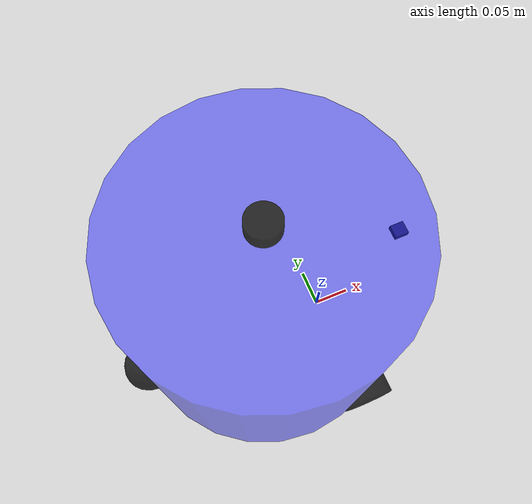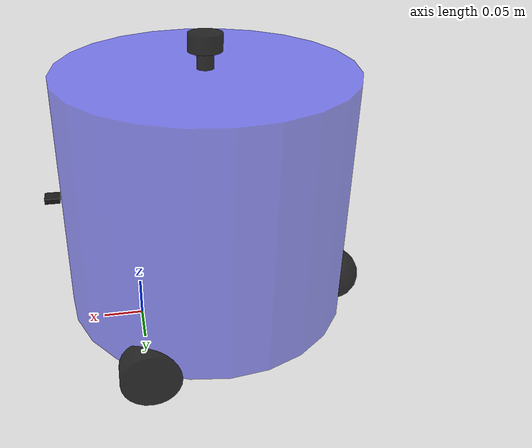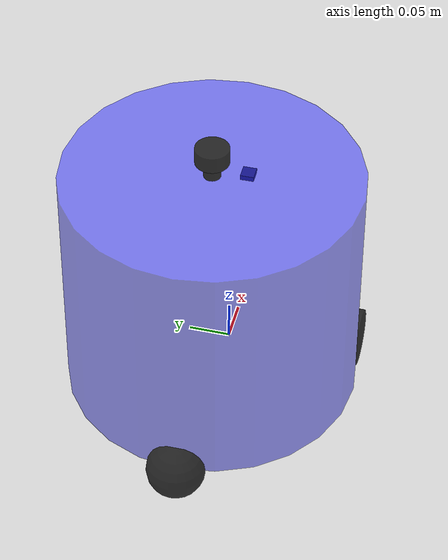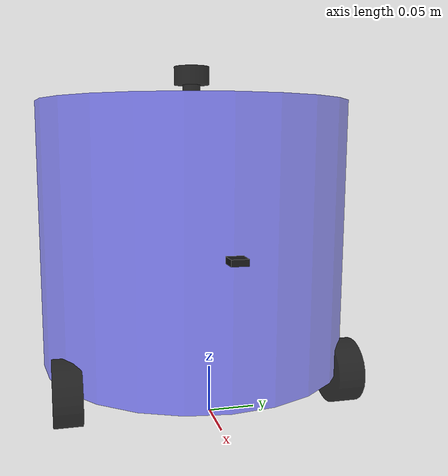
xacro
<?xml version="1.0"?>
<robot xmlns:xacro="http://www.ros.org/wiki/xacro" name="my_robot">

    <!-- ========== 定义参数变量（对应你的 Python 代码） ========== -->
    <xacro:property name="body_length" value="0.30" />
    <xacro:property name="body_radius" value="0.175" />
    <xacro:property name="body_mass" value="2.0" />

    <xacro:property name="wheel_radius" value="0.035" />
    <xacro:property name="wheel_width" value="0.03" />
    <xacro:property name="wheel_mass" value="0.2" />

    <xacro:property name="caster_radius" value="0.035" />
    <xacro:property name="caster_mass" value="0.1" />

    <xacro:property name="lidar_radius" value="0.02" />
    <xacro:property name="lidar_height" value="0.02" />

    <!-- 计算位置偏移 -->
    <xacro:property name="body_offset" value="${body_length/2.0 + wheel_radius}" />
    <xacro:property name="wheel_z_offset" value="${wheel_radius - body_offset}" />
    <xacro:property name="caster_z_offset" value="${wheel_radius - body_offset}" />
    <xacro:property name="lidar_z_position" value="${body_length/2.0}" />

    <!-- 轮子夹角 60 度三角布局 -->
    <xacro:property name="wheel_x_offset" value="${body_radius/2.0}" />
    <xacro:property name="wheel_y_offset" value="${1.732 * body_radius/2.0}" />

    <!-- ========== 包含组件宏定义 ========== -->
    <!-- 基座组件 -->
    <xacro:include filename="$(find robot_description)/urdf/robot/base.urdf.xacro" />

    <!-- 传感器组件 -->
    <xacro:include filename="$(find robot_description)/urdf/robot/sensor/imu.urdf.xacro" />
    <xacro:include filename="$(find robot_description)/urdf/robot/sensor/laser.urdf.xacro" />
    <xacro:include filename="$(find robot_description)/urdf/robot/sensor/tof.urdf.xacro" />

    <!-- 执行器组件 -->
    <xacro:include filename="$(find robot_description)/urdf/robot/actuator/wheel.urdf.xacro" />
    <xacro:include filename="$(find robot_description)/urdf/robot/actuator/caster.urdf.xacro" />

    <!-- ========== 实例化组件（使用你的参数） ========== -->
    <!-- 基座 -->
    <xacro:base_xacro length="${body_length}" radius="${body_radius}" wheel_radius="${wheel_radius}" wheel_x_offset="${wheel_x_offset}" mass="${body_mass}" />

    <!-- 传感器 -->
    <xacro:property name="imu_x" value="-0.0357881"/>
    <xacro:property name="imu_y" value="-0.0051315"/>
    <xacro:property name="imu_z" value="0.0907072"/>
    <xacro:imu_xacro xyz="${imu_x} ${imu_y} ${imu_z}" />
    <xacro:laser_xacro xyz="0 0 0" radius="${lidar_radius}" height="${lidar_height}" z_pose="${lidar_z_position}"/>
    <xacro:tof_xacro body_radius="${body_radius}"/>

    <!-- 执行器 - 主动轮（60度三角布局） -->
    <xacro:wheel_xacro wheel_name="left"
                       xyz="${wheel_x_offset} ${wheel_y_offset} ${wheel_z_offset}"
                       radius="${wheel_radius}" length="${wheel_width}" mass="${wheel_mass}" />

    <xacro:wheel_xacro wheel_name="right"
                       xyz="${wheel_x_offset} -${wheel_y_offset} ${wheel_z_offset}"
                       radius="${wheel_radius}" length="${wheel_width}" mass="${wheel_mass}" />

    <!-- 执行器 - 从动轮（万向轮） -->
    <xacro:caster_xacro caster_name="rear"
                        xyz="-${body_radius} 0 ${caster_z_offset}"
                        radius="${caster_radius}" mass="${caster_mass}" />

    <!-- ========== Gazebo 插件 ========== -->
    <!-- 差动驱动插件 -->
    <!-- 传感器插件 -->

</robot>

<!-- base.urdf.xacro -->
<robot xmlns:xacro="http://www.ros.org/wiki/xacro">
   <xacro:include filename="$(find robot_description)/urdf/robot/common_inertia.xacro" />
    <xacro:macro name="base_xacro" params="length radius wheel_radius mass wheel_x_offset">
     <link name="base_footprint" />

        <joint name="base_joint" type="fixed">
            <parent link="base_footprint" />
            <child link="base_link" />
            <origin xyz="${-wheel_x_offset} 0.0 ${length/2.0+wheel_radius-0.001}" rpy="0 0 0" />
        </joint>

        <link name="base_link">
            <visual>
                <origin xyz="0 0 0.0" rpy="0 0 0" />
                <geometry>
                    <cylinder length="${length}" radius="${radius}" />
                </geometry>
                <material name="blue">
                    <color rgba="0.1 0.1 1.0 0.5"/>
                </material>
            </visual>
            <collision>
                <origin xyz="0 0 0.0" rpy="0 0 0" />
                <geometry>
                    <cylinder length="${length}" radius="${radius}" />
                </geometry>
                <material name="blue">
                    <color rgba="0.1 0.1 1.0 0.5"/>
                </material>
            </collision>
            <xacro:cylinder_inertia m="${mass}" r="${radius}" h="${length}"/>
        </link>

    </xacro:macro>

</robot>

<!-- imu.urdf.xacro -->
<robot xmlns:xacro="http://www.ros.org/wiki/xacro">
   <!-- 常量定义 -->
   <xacro:property name="M_PI" value="3.1415926535897931"/>

   <xacro:include filename="$(find robot_description)/urdf/robot/common_inertia.xacro" />
    <xacro:macro name="imu_xacro" params="xyz">
        <link name="imu_link">
            <visual>
                <origin xyz="0 0 0" rpy="0 0 0" />
                <geometry>
                    <box size="0.02 0.02 0.02" />
                </geometry>
                <material name="black">
                    <color rgba="0 0 0 0.8" />
                </material>
            </visual>
            <collision>
                <origin xyz="0 0 0" rpy="0 0 0" />
                <geometry>
                    <box size="0.02 0.02 0.02" />
                </geometry>
                <material name="black">
                    <color rgba="0 0 0 0.8" />
                </material>
            </collision>
            <xacro:box_inertia m="0.01" w="0.02" d="0.02" h="0.02"/>
        </link>

        <joint name="imu_joint" type="fixed">
            <parent link="base_link" />
            <child link="imu_link" />
            <origin xyz="0 0 0" rpy="0 0 0"/>
        </joint>
    </xacro:macro>
</robot>

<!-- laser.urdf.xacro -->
<robot xmlns:xacro="http://www.ros.org/wiki/xacro">
   <xacro:include filename="$(find robot_description)/urdf/robot/common_inertia.xacro" />
    <xacro:macro name="laser_xacro" params="xyz radius height z_pose" >
        <gazebo reference="laser_cylinder_link">
            <material>Gazebo/Black</material>
        </gazebo>
        <gazebo reference="laser_link">
            <material>Gazebo/Black</material>
        </gazebo>

        <!-- ============雷达支撑杆2cm================ -->
        <link name="laser_cylinder_link">
            <visual>
                <origin xyz="0 0 0" rpy="0 0 0" />
                <geometry>
                    <cylinder length="${z_pose + height}" radius="0.01" />
                </geometry>
                <material name="black">
                    <color rgba="0.0 0.0 0.0 0.8" />
                </material>
            </visual>
            <collision>
                <origin xyz="0 0 0" rpy="0 0 0" />
                <geometry>
                    <cylinder length="${z_pose + height}" radius="0.01" />
                </geometry>
                <material name="black">
                    <color rgba="0.0 0.0 0.0 0.8" />
                </material>
            </collision>
            <xacro:cylinder_inertia m="0.01" r="0.01" h="${z_pose + height}" />
        </link>

        <joint name="laser_cylinder_joint" type="fixed">
            <parent link="base_link" />
            <child link="laser_cylinder_link" />
            <origin xyz="0 0 ${(z_pose + height)/2.0}" />
        </joint>
        <!-- ============雷达================ -->
        <link name="laser_link">
            <visual>
                <origin xyz="0 0 0" rpy="0 0 0" />
                <geometry>
                    <cylinder length="${height}" radius="${radius}" />
                </geometry>
                <material name="black">
                    <color rgba="0.0 0.0 0.0 0.8" />
                </material>
            </visual>
            <collision>
                <origin xyz="0 0 0" rpy="0 0 0" />
                <geometry>
                    <cylinder length="${height}" radius="${radius}" />
                </geometry>
                <material name="black">
                    <color rgba="0.0 0.0 0.0 0.8" />
                </material>
            </collision>
            <xacro:cylinder_inertia m="0.03" r="${radius}" h="${height}" />
        </link>

        <joint name="laser_joint" type="fixed">
            <parent link="laser_cylinder_link" />
            <child link="laser_link" />
            <origin xyz="0 0 ${z_pose * 0.5 + height}" rpy="0 0 3.14159"/>
        </joint>

    </xacro:macro>

</robot>

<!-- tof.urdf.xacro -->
<robot xmlns:xacro="http://www.ros.org/wiki/xacro">
  <xacro:include filename="$(find robot_description)/urdf/robot/common_inertia.xacro" />
  <xacro:macro name="tof_xacro" params="body_radius mode:=high_precision">
    <!-- ============ TOF400F 传感器参数 (根据手册) ============ -->
    <!-- 尺寸: 18mm x 17mm x 6.5mm -->
    <xacro:property name="tof_length" value="0.018"/>
    <xacro:property name="tof_width"  value="0.017"/>
    <xacro:property name="tof_height" value="0.0065"/>
    <xacro:property name="tof_mass"   value="0.003"/>

    <!-- 27° FOV = 0.471 rad -->
    <xacro:property name="fov_rad" value="0.4712389"/>
    <xacro:property name="half_fov" value="${fov_rad / 2.0}"/>

    <!-- pitch 15  0.2618 -->
    <xacro:property name="pitch_rad" value="0"/>

    <!-- 模式参数 (手册 Page 1, Page 11) -->
    <!-- 高精度模式: 30ms, 1.3m, ±5% -->
    <xacro:property name="hp_update_rate" value="33.33"/>
    <xacro:property name="hp_max_range"   value="1.3"/>
    <xacro:property name="hp_noise_std"   value="0.005"/>

    <!-- 远距离模式: 200ms, 4.0m, ±5%-±25% -->
    <xacro:property name="ld_update_rate" value="5.0"/>
    <xacro:property name="ld_max_range"   value="4.0"/>
    <xacro:property name="ld_noise_std"   value="0.02"/>

    <!-- 根据模式选择参数 -->
    <xacro:if value="${mode == 'high_precision'}">
      <xacro:property name="current_update_rate" value="${hp_update_rate}"/>
      <xacro:property name="current_max_range"   value="${hp_max_range}"/>
      <xacro:property name="current_noise_std"   value="${hp_noise_std}"/>
    </xacro:if>

    <xacro:unless value="${mode == 'high_precision'}">
      <xacro:property name="current_update_rate" value="${ld_update_rate}"/>
      <xacro:property name="current_max_range"   value="${ld_max_range}"/>
      <xacro:property name="current_noise_std"   value="${ld_noise_std}"/>
    </xacro:unless>

    <!-- ============ TOF400F 传感器主体 ============ -->
    <link name="tof400f_link">
      <visual>
        <origin xyz="0 0 0" rpy="0 0 0"/>

        <geometry>
          <box size="${tof_length} ${tof_width} ${tof_height}"/>
        </geometry>

        <material name="black">
          <color rgba="0.1 0.1 0.1 1.0"/>
        </material>

      </visual>

      <collision>
        <origin xyz="0 0 0" rpy="0 0 0"/>
        <geometry>
          <box size="${tof_length} ${tof_width} ${tof_height}"/>
        </geometry>
      </collision>

      <xacro:box_inertia m="${tof_mass}" w="${tof_length}" h="${tof_width}" d="${tof_height}"/>
    </link>

    <joint name="tof400f_joint" type="fixed">
      <parent link="base_link"/>
      <child link="tof400f_link"/>
      <!-- 传感器突出安装支架前侧 -->
      <origin xyz="${0.01 + body_radius} 0 0" rpy="0 0 0"/>
    </joint>

    <gazebo reference="tof400f_link">
      <material>Gazebo/Black</material>

      <sensor name="tof400f_sensor" type="ray">

        <plugin name="tof400f_plugin" filename="libgazebo_ros_ray_sensor.so">
          <ros>
            <namespace>/</namespace>
            <remapping>~/out:=tof_cloud</remapping>
          </ros>
          <output_type>sensor_msgs/PointCloud2</output_type>
          <frame_name>tof400f_link</frame_name>
        </plugin>

        <always_on>true</always_on>
        <visualize>true</visualize>
        <update_rate>${current_update_rate}</update_rate>

        <ray>
          <scan>
            <horizontal>
              <samples>5</samples>
              <min_angle>${-half_fov}</min_angle>
              <max_angle>${half_fov}</max_angle>
            </horizontal>
            <vertical>
              <samples>5</samples>
              <min_angle>${-half_fov + pitch_rad}</min_angle>
              <max_angle>${half_fov + pitch_rad}</max_angle>
            </vertical>
          </scan>

          <range>
            <min>${tof_length/2.0 + 0.005}</min>
            <max>${current_max_range}</max>
            <resolution>0.001</resolution>
          </range>

          <noise type="gaussian">
            <mean>0.0</mean>
            <stddev>${current_noise_std}</stddev>
          </noise>
        </ray>

      </sensor>
    </gazebo>

   </xacro:macro>

</robot>

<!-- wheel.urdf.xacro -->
<robot xmlns:xacro="http://www.ros.org/wiki/xacro">
   <xacro:include filename="$(find robot_description)/urdf/robot/common_inertia.xacro" />
    <xacro:macro name="wheel_xacro" params="wheel_name xyz radius length mass">
        <link name="${wheel_name}_wheel_link">
            <visual>
                <origin xyz="0 0 0" rpy="1.57079 0 0" />
                <geometry>
                    <cylinder length="${length}" radius="${radius}" />
                </geometry>
                <material name="black">
                    <color rgba="0.0 0.0 0.0 0.8"/>
                </material>
            </visual>
            <collision>
                <origin xyz="0 0 0" rpy="1.57079 0 0" />
                <geometry>
                    <cylinder length="${length}" radius="${radius}" />
                </geometry>
                <material name="black">
                    <color rgba="0.0 0.0 0.0 0.8"/>
                </material>
            </collision>
            <xacro:cylinder_inertia m="${mass}" h="${length}" r="${radius}"/>
        </link>
        <gazebo reference="${wheel_name}_wheel_link">
            <mu1 value="50.0" />
            <mu2 value="50.0" />
            <kp value="1000000.0" />
            <kd value="1.0" />
        </gazebo>

        <joint name="${wheel_name}_wheel_joint" type="continuous">
            <parent link="base_link" />
            <child link="${wheel_name}_wheel_link" />
            <origin xyz="${xyz}" />
            <axis xyz="0 1 0" />
        </joint>
    </xacro:macro>
</robot>

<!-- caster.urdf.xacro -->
<robot xmlns:xacro="http://www.ros.org/wiki/xacro">
   <xacro:include filename="$(find robot_description)/urdf/robot/common_inertia.xacro" />
    <xacro:macro name="caster_xacro" params="caster_name xyz radius mass">
        <link name="${caster_name}_caster_link">
            <visual>
                <origin xyz="0 0 0" rpy="0 0 0" />
                <geometry>
                    <sphere radius="${radius}" />
                </geometry>
                <material name="black">
                    <color rgba="0.0 0.0 0.0 0.8"/>
                </material>
            </visual>
            <collision>
                <origin xyz="0 0 0" rpy="0 0 0" />
                <geometry>
                    <sphere radius="${radius}" />
                </geometry>
                <material name="black">
                    <color rgba="0.0 0.0 0.0 0.8"/>
                </material>
            </collision>
            <xacro:sphere_inertia m="${mass}" r="${radius}" />
        </link>
        <gazebo reference="${caster_name}_caster_link">
            <mu1 value="0.0" />
            <mu2 value="0.0" />
            <kp value="1000000.0" />
            <kd value="1.0" />
        </gazebo>

        <joint name="${caster_name}_caster_joint" type="fixed">
            <parent link="base_link" />
            <child link="${caster_name}_caster_link" />
            <origin xyz="${xyz}" />
            <axis xyz="0 0 0" />
        </joint>

    </xacro:macro>
</robot>
